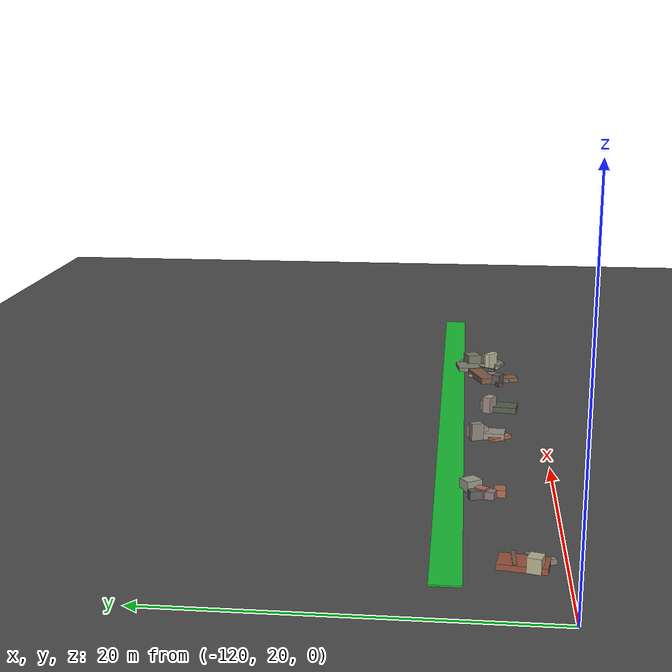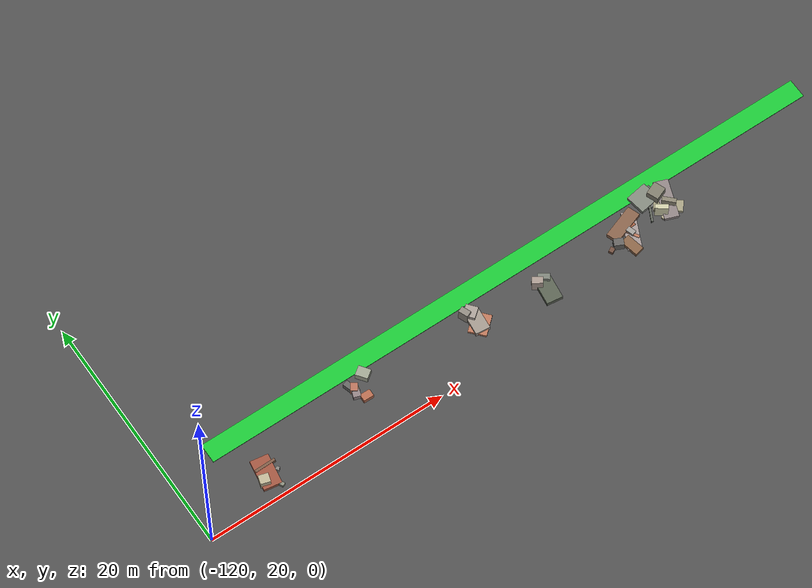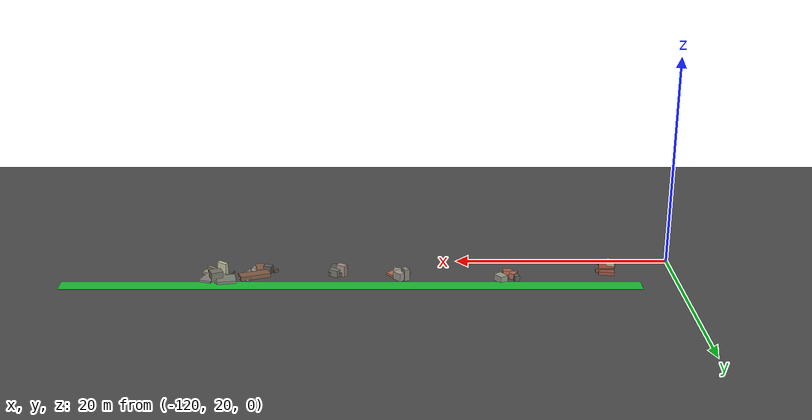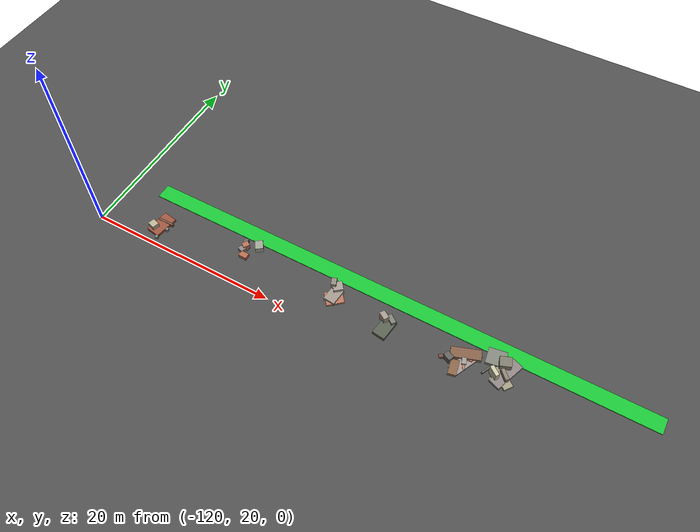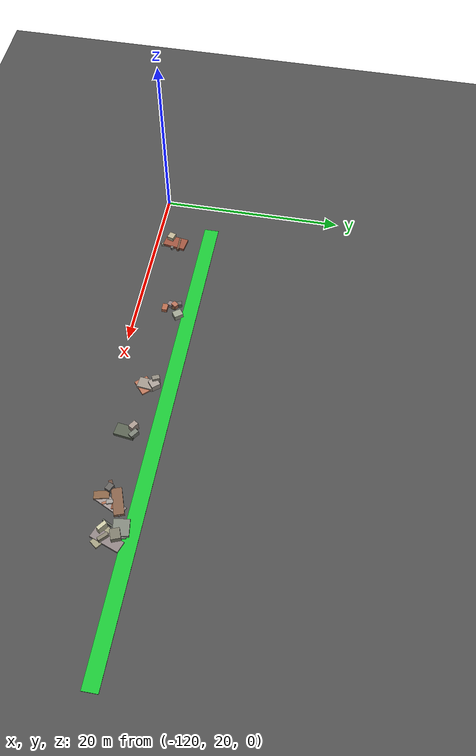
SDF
<sdf version="1.6">
 <world name="navitas_arena">
  <model name="ground_plane">
   <static>true</static>
   <link name="link">
    <collision name="collision">
     <geometry><plane><normal>0 0 1</normal><size>400 400</size></plane></geometry>
     <surface><friction><ode><mu>0.800</mu><mu2>0.800</mu2></ode></friction></surface>
    </collision>
    <visual name="visual">
     <cast_shadows>false</cast_shadows>
     <geometry><plane><normal>0 0 1</normal><size>400 400</size></plane></geometry>
     <material>
      <specular>0.04 0.04 0.04 1</specular>
      <script>
       <uri>file://media/materials/scripts/navitas_asphalt.material</uri>
       <name>Navitas/RealArenaAsphalt</name>
      </script>
     </material>
    </visual>
   </link>
  </model>
  <model name="brd_kolay_N">
   <static>true</static>
   <pose>-90.000 25.800 0.040 0 0 0.000</pose>
   <link name="link">
    <collision name="col"><geometry><box><size>53.200 1.600 0.080</size></box></geometry></collision>
    <visual name="vis">
     <geometry><box><size>53.200 1.600 0.080</size></box></geometry>
     <material>
      <ambient>0.10 0.75 0.20 1</ambient>
      <diffuse>0.10 0.75 0.20 1</diffuse>
      <specular>0.04 0.04 0.04 1</specular>
     </material>
    </visual>
   </link>
  </model>
  <model name="deb_kolay_17">
   <static>true</static>
   <pose>-81.853 23.199 0.000 0 0 0</pose>
   <link name="link">
    <collision name="col_0">
     <pose>-0.427 -0.559 0.349 0.000 0.000 1.129</pose>
     <geometry><box><size>0.589 0.770 0.698</size></box></geometry>
    </collision>
    <visual name="vis_0">
     <pose>-0.427 -0.559 0.349 0.000 0.000 1.129</pose>
     <geometry><box><size>0.589 0.770 0.698</size></box></geometry>
     <material>
      <ambient>0.36 0.34 0.33 1</ambient>
      <diffuse>0.38 0.37 0.36 1</diffuse>
      <specular>0.05 0.05 0.045 1</specular>
     </material>
    </visual>
    <collision name="col_1">
     <pose>0.795 0.552 0.197 0.000 0.000 3.487</pose>
     <geometry><box><size>2.820 1.041 0.394</size></box></geometry>
    </collision>
    <visual name="vis_1">
     <pose>0.795 0.552 0.197 0.000 0.000 3.487</pose>
     <geometry><box><size>2.820 1.041 0.394</size></box></geometry>
     <material>
      <ambient>0.47 0.34 0.26 1</ambient>
      <diffuse>0.51 0.37 0.28 1</diffuse>
      <specular>0.05 0.05 0.045 1</specular>
     </material>
    </visual>
    <collision name="col_2">
     <pose>0.372 -1.177 0.161 0.000 0.000 1.769</pose>
     <geometry><box><size>1.522 0.797 0.322</size></box></geometry>
    </collision>
    <visual name="vis_2">
     <pose>0.372 -1.177 0.161 0.000 0.000 1.769</pose>
     <geometry><box><size>1.522 0.797 0.322</size></box></geometry>
     <material>
      <ambient>0.48 0.36 0.25 1</ambient>
      <diffuse>0.52 0.38 0.27 1</diffuse>
      <specular>0.05 0.05 0.045 1</specular>
     </material>
    </visual>
    <collision name="col_3">
     <pose>-1.088 -0.649 0.143 0.000 0.000 3.645</pose>
     <geometry><box><size>0.452 0.360 0.286</size></box></geometry>
    </collision>
    <visual name="vis_3">
     <pose>-1.088 -0.649 0.143 0.000 0.000 3.645</pose>
     <geometry><box><size>0.452 0.360 0.286</size></box></geometry>
     <material>
      <ambient>0.39 0.28 0.22 1</ambient>
      <diffuse>0.42 0.30 0.24 1</diffuse>
      <specular>0.05 0.05 0.045 1</specular>
     </material>
    </visual>
   </link>
  </model>
  <model name="deb_kolay_19">
   <static>true</static>
   <pose>-113.766 22.358 0.000 0 0 0</pose>
   <link name="link">
    <collision name="col_0">
     <pose>-0.061 -0.844 0.142 0.000 0.000 1.971</pose>
     <geometry><box><size>2.097 0.293 0.283</size></box></geometry>
    </collision>
    <visual name="vis_0">
     <pose>-0.061 -0.844 0.142 0.000 0.000 1.971</pose>
     <geometry><box><size>2.097 0.293 0.283</size></box></geometry>
     <material>
      <ambient>0.48 0.49 0.44 1</ambient>
      <diffuse>0.52 0.53 0.47 1</diffuse>
      <specular>0.05 0.05 0.045 1</specular>
     </material>
    </visual>
    <collision name="col_1">
     <pose>-0.185 -0.247 0.155 0.000 0.000 1.414</pose>
     <geometry><box><size>2.482 1.459 0.311</size></box></geometry>
    </collision>
    <visual name="vis_1">
     <pose>-0.185 -0.247 0.155 0.000 0.000 1.414</pose>
     <geometry><box><size>2.482 1.459 0.311</size></box></geometry>
     <material>
      <ambient>0.56 0.29 0.22 1</ambient>
      <diffuse>0.60 0.32 0.24 1</diffuse>
      <specular>0.05 0.05 0.045 1</specular>
     </material>
    </visual>
    <collision name="col_2">
     <pose>0.044 0.210 0.174 0.000 0.000 0.016</pose>
     <geometry><box><size>1.699 0.215 0.347</size></box></geometry>
    </collision>
    <visual name="vis_2">
     <pose>0.044 0.210 0.174 0.000 0.000 0.016</pose>
     <geometry><box><size>1.699 0.215 0.347</size></box></geometry>
     <material>
      <ambient>0.43 0.32 0.24 1</ambient>
      <diffuse>0.47 0.34 0.26 1</diffuse>
      <specular>0.05 0.05 0.045 1</specular>
     </material>
    </visual>
    <collision name="col_3">
     <pose>0.671 -0.483 0.170 0.000 0.000 2.357</pose>
     <geometry><box><size>0.284 0.291 0.340</size></box></geometry>
    </collision>
    <visual name="vis_3">
     <pose>0.671 -0.483 0.170 0.000 0.000 2.357</pose>
     <geometry><box><size>0.284 0.291 0.340</size></box></geometry>
     <material>
      <ambient>0.46 0.45 0.43 1</ambient>
      <diffuse>0.50 0.49 0.47 1</diffuse>
      <specular>0.05 0.05 0.045 1</specular>
     </material>
    </visual>
    <collision name="col_4">
     <pose>-0.670 -0.797 0.397 0.000 0.000 1.281</pose>
     <geometry><box><size>0.723 0.780 0.794</size></box></geometry>
    </collision>
    <visual name="vis_4">
     <pose>-0.670 -0.797 0.397 0.000 0.000 1.281</pose>
     <geometry><box><size>0.723 0.780 0.794</size></box></geometry>
     <material>
      <ambient>0.66 0.63 0.52 1</ambient>
      <diffuse>0.72 0.68 0.56 1</diffuse>
      <specular>0.05 0.05 0.045 1</specular>
     </material>
    </visual>
   </link>
  </model>
  <model name="deb_kolay_24">
   <static>true</static>
   <pose>-80.832 23.178 0.000 0 0 0</pose>
   <link name="link">
    <collision name="col_0">
     <pose>0.035 -0.125 0.100 0.000 0.000 4.269</pose>
     <geometry><box><size>3.149 1.082 0.200</size></box></geometry>
    </collision>
    <visual name="vis_0">
     <pose>0.035 -0.125 0.100 0.000 0.000 4.269</pose>
     <geometry><box><size>3.149 1.082 0.200</size></box></geometry>
     <material>
      <ambient>0.57 0.53 0.52 1</ambient>
      <diffuse>0.62 0.57 0.56 1</diffuse>
      <specular>0.05 0.05 0.045 1</specular>
     </material>
    </visual>
    <collision name="col_1">
     <pose>0.349 0.225 0.139 0.000 0.000 1.627</pose>
     <geometry><box><size>0.282 0.453 0.278</size></box></geometry>
    </collision>
    <visual name="vis_1">
     <pose>0.349 0.225 0.139 0.000 0.000 1.627</pose>
     <geometry><box><size>0.282 0.453 0.278</size></box></geometry>
     <material>
      <ambient>0.58 0.33 0.23 1</ambient>
      <diffuse>0.62 0.36 0.25 1</diffuse>
      <specular>0.05 0.05 0.045 1</specular>
     </material>
    </visual>
    <collision name="col_2">
     <pose>-0.254 -0.081 0.129 0.000 0.000 2.100</pose>
     <geometry><box><size>1.883 0.215 0.257</size></box></geometry>
    </collision>
    <visual name="vis_2">
     <pose>-0.254 -0.081 0.129 0.000 0.000 2.100</pose>
     <geometry><box><size>1.883 0.215 0.257</size></box></geometry>
     <material>
      <ambient>0.65 0.43 0.32 1</ambient>
      <diffuse>0.71 0.46 0.35 1</diffuse>
      <specular>0.05 0.05 0.045 1</specular>
     </material>
    </visual>
    <collision name="col_3">
     <pose>-0.067 -0.184 0.210 0.000 0.000 1.886</pose>
     <geometry><box><size>0.648 0.419 0.421</size></box></geometry>
    </collision>
    <visual name="vis_3">
     <pose>-0.067 -0.184 0.210 0.000 0.000 1.886</pose>
     <geometry><box><size>0.648 0.419 0.421</size></box></geometry>
     <material>
      <ambient>0.56 0.55 0.53 1</ambient>
      <diffuse>0.61 0.59 0.57 1</diffuse>
      <specular>0.05 0.05 0.045 1</specular>
     </material>
    </visual>
   </link>
  </model>
  <model name="deb_kolay_32">
   <static>true</static>
   <pose>-77.544 23.545 0.000 0 0 0</pose>
   <link name="link">
    <collision name="col_0">
     <pose>-0.530 -0.503 0.582 0.000 0.000 2.502</pose>
     <geometry><box><size>1.014 0.375 1.164</size></box></geometry>
    </collision>
    <visual name="vis_0">
     <pose>-0.530 -0.503 0.582 0.000 0.000 2.502</pose>
     <geometry><box><size>1.014 0.375 1.164</size></box></geometry>
     <material>
      <ambient>0.73 0.71 0.60 1</ambient>
      <diffuse>0.78 0.77 0.64 1</diffuse>
      <specular>0.05 0.05 0.045 1</specular>
     </material>
    </visual>
    <collision name="col_1">
     <pose>0.073 -0.239 0.126 0.000 0.000 2.443</pose>
     <geometry><box><size>0.492 0.396 0.252</size></box></geometry>
    </collision>
    <visual name="vis_1">
     <pose>0.073 -0.239 0.126 0.000 0.000 2.443</pose>
     <geometry><box><size>0.492 0.396 0.252</size></box></geometry>
     <material>
      <ambient>0.62 0.36 0.25 1</ambient>
      <diffuse>0.67 0.39 0.27 1</diffuse>
      <specular>0.05 0.05 0.045 1</specular>
     </material>
    </visual>
    <collision name="col_2">
     <pose>-0.628 -0.907 0.091 0.000 0.000 1.699</pose>
     <geometry><box><size>0.222 0.251 0.182</size></box></geometry>
    </collision>
    <visual name="vis_2">
     <pose>-0.628 -0.907 0.091 0.000 0.000 1.699</pose>
     <geometry><box><size>0.222 0.251 0.182</size></box></geometry>
     <material>
      <ambient>0.67 0.63 0.53 1</ambient>
      <diffuse>0.72 0.68 0.57 1</diffuse>
      <specular>0.05 0.05 0.045 1</specular>
     </material>
    </visual>
    <collision name="col_3">
     <pose>0.247 -0.330 0.108 0.000 0.000 2.493</pose>
     <geometry><box><size>2.241 0.927 0.216</size></box></geometry>
    </collision>
    <visual name="vis_3">
     <pose>0.247 -0.330 0.108 0.000 0.000 2.493</pose>
     <geometry><box><size>2.241 0.927 0.216</size></box></geometry>
     <material>
      <ambient>0.57 0.56 0.46 1</ambient>
      <diffuse>0.62 0.60 0.49 1</diffuse>
      <specular>0.05 0.05 0.045 1</specular>
     </material>
    </visual>
    <collision name="col_4">
     <pose>0.317 0.097 0.065 0.000 0.000 2.125</pose>
     <geometry><box><size>0.368 0.233 0.130</size></box></geometry>
    </collision>
    <visual name="vis_4">
     <pose>0.317 0.097 0.065 0.000 0.000 2.125</pose>
     <geometry><box><size>0.368 0.233 0.130</size></box></geometry>
     <material>
      <ambient>0.53 0.48 0.49 1</ambient>
      <diffuse>0.57 0.52 0.53 1</diffuse>
      <specular>0.05 0.05 0.045 1</specular>
     </material>
    </visual>
    <collision name="col_5">
     <pose>0.394 0.152 0.138 0.000 0.000 1.219</pose>
     <geometry><box><size>3.180 1.149 0.275</size></box></geometry>
    </collision>
    <visual name="vis_5">
     <pose>0.394 0.152 0.138 0.000 0.000 1.219</pose>
     <geometry><box><size>3.180 1.149 0.275</size></box></geometry>
     <material>
      <ambient>0.50 0.47 0.46 1</ambient>
      <diffuse>0.54 0.50 0.50 1</diffuse>
      <specular>0.05 0.05 0.045 1</specular>
     </material>
    </visual>
    <collision name="col_6">
     <pose>-1.072 0.152 0.103 0.000 0.000 1.107</pose>
     <geometry><box><size>2.043 0.166 0.205</size></box></geometry>
    </collision>
    <visual name="vis_6">
     <pose>-1.072 0.152 0.103 0.000 0.000 1.107</pose>
     <geometry><box><size>2.043 0.166 0.205</size></box></geometry>
     <material>
      <ambient>0.33 0.35 0.32 1</ambient>
      <diffuse>0.36 0.38 0.34 1</diffuse>
      <specular>0.05 0.05 0.045 1</specular>
     </material>
    </visual>
   </link>
  </model>
  <model name="deb_kolay_34">
   <static>true</static>
   <pose>-77.807 23.910 0.000 0 0 0</pose>
   <link name="link">
    <collision name="col_0">
     <pose>-0.701 0.823 0.164 0.000 0.000 1.735</pose>
     <geometry><box><size>1.605 1.759 0.328</size></box></geometry>
    </collision>
    <visual name="vis_0">
     <pose>-0.701 0.823 0.164 0.000 0.000 1.735</pose>
     <geometry><box><size>1.605 1.759 0.328</size></box></geometry>
     <material>
      <ambient>0.45 0.48 0.44 1</ambient>
      <diffuse>0.49 0.51 0.47 1</diffuse>
      <specular>0.05 0.05 0.045 1</specular>
     </material>
    </visual>
    <collision name="col_1">
     <pose>0.632 -0.566 0.403 0.000 0.000 -0.787</pose>
     <geometry><box><size>1.092 0.357 0.807</size></box></geometry>
    </collision>
    <visual name="vis_1">
     <pose>0.632 -0.566 0.403 0.000 0.000 -0.787</pose>
     <geometry><box><size>1.092 0.357 0.807</size></box></geometry>
     <material>
      <ambient>0.48 0.46 0.40 1</ambient>
      <diffuse>0.52 0.50 0.43 1</diffuse>
      <specular>0.05 0.05 0.045 1</specular>
     </material>
    </visual>
    <collision name="col_2">
     <pose>-0.285 -0.456 0.067 0.000 0.000 -0.096</pose>
     <geometry><box><size>0.375 0.160 0.134</size></box></geometry>
    </collision>
    <visual name="vis_2">
     <pose>-0.285 -0.456 0.067 0.000 0.000 -0.096</pose>
     <geometry><box><size>0.375 0.160 0.134</size></box></geometry>
     <material>
      <ambient>0.57 0.36 0.22 1</ambient>
      <diffuse>0.61 0.39 0.23 1</diffuse>
      <specular>0.05 0.05 0.045 1</specular>
     </material>
    </visual>
    <collision name="col_3">
     <pose>0.084 -0.033 0.090 0.000 0.000 -0.224</pose>
     <geometry><box><size>0.349 0.309 0.180</size></box></geometry>
    </collision>
    <visual name="vis_3">
     <pose>0.084 -0.033 0.090 0.000 0.000 -0.224</pose>
     <geometry><box><size>0.349 0.309 0.180</size></box></geometry>
     <material>
      <ambient>0.65 0.38 0.28 1</ambient>
      <diffuse>0.70 0.41 0.31 1</diffuse>
      <specular>0.05 0.05 0.045 1</specular>
     </material>
    </visual>
    <collision name="col_4">
     <pose>0.233 0.533 0.468 0.000 0.000 0.376</pose>
     <geometry><box><size>1.087 0.974 0.936</size></box></geometry>
    </collision>
    <visual name="vis_4">
     <pose>0.233 0.533 0.468 0.000 0.000 0.376</pose>
     <geometry><box><size>1.087 0.974 0.936</size></box></geometry>
     <material>
      <ambient>0.45 0.44 0.38 1</ambient>
      <diffuse>0.48 0.47 0.41 1</diffuse>
      <specular>0.05 0.05 0.045 1</specular>
     </material>
    </visual>
    <collision name="col_5">
     <pose>-0.279 0.682 0.095 0.000 0.000 1.695</pose>
     <geometry><box><size>1.522 1.296 0.190</size></box></geometry>
    </collision>
    <visual name="vis_5">
     <pose>-0.279 0.682 0.095 0.000 0.000 1.695</pose>
     <geometry><box><size>1.522 1.296 0.190</size></box></geometry>
     <material>
      <ambient>0.40 0.40 0.39 1</ambient>
      <diffuse>0.43 0.43 0.42 1</diffuse>
      <specular>0.05 0.05 0.045 1</specular>
     </material>
    </visual>
   </link>
  </model>
  <model name="deb_kolay_71">
   <static>true</static>
   <pose>-94.483 23.883 0.000 0 0 0</pose>
   <link name="link">
    <collision name="col_0">
     <pose>0.067 -0.730 0.102 0.000 0.000 3.858</pose>
     <geometry><box><size>1.741 1.443 0.204</size></box></geometry>
    </collision>
    <visual name="vis_0">
     <pose>0.067 -0.730 0.102 0.000 0.000 3.858</pose>
     <geometry><box><size>1.741 1.443 0.204</size></box></geometry>
     <material>
      <ambient>0.66 0.42 0.32 1</ambient>
      <diffuse>0.71 0.45 0.34 1</diffuse>
      <specular>0.05 0.05 0.045 1</specular>
     </material>
    </visual>
    <collision name="col_1">
     <pose>-0.057 -0.581 0.207 0.000 0.000 1.467</pose>
     <geometry><box><size>1.667 1.177 0.413</size></box></geometry>
    </collision>
    <visual name="vis_1">
     <pose>-0.057 -0.581 0.207 0.000 0.000 1.467</pose>
     <geometry><box><size>1.667 1.177 0.413</size></box></geometry>
     <material>
      <ambient>0.57 0.53 0.49 1</ambient>
      <diffuse>0.61 0.57 0.53 1</diffuse>
      <specular>0.05 0.05 0.045 1</specular>
     </material>
    </visual>
    <collision name="col_2">
     <pose>-0.096 0.281 0.364 0.000 0.000 2.255</pose>
     <geometry><box><size>0.958 0.960 0.728</size></box></geometry>
    </collision>
    <visual name="vis_2">
     <pose>-0.096 0.281 0.364 0.000 0.000 2.255</pose>
     <geometry><box><size>0.958 0.960 0.728</size></box></geometry>
     <material>
      <ambient>0.60 0.55 0.53 1</ambient>
      <diffuse>0.64 0.60 0.57 1</diffuse>
      <specular>0.05 0.05 0.045 1</specular>
     </material>
    </visual>
    <collision name="col_3">
     <pose>-0.558 0.361 0.536 0.000 0.000 3.530</pose>
     <geometry><box><size>0.504 0.784 1.071</size></box></geometry>
    </collision>
    <visual name="vis_3">
     <pose>-0.558 0.361 0.536 0.000 0.000 3.530</pose>
     <geometry><box><size>0.504 0.784 1.071</size></box></geometry>
     <material>
      <ambient>0.50 0.48 0.44 1</ambient>
      <diffuse>0.54 0.52 0.48 1</diffuse>
      <specular>0.05 0.05 0.045 1</specular>
     </material>
    </visual>
   </link>
  </model>
  <model name="deb_kolay_173">
   <static>true</static>
   <pose>-88.606 23.167 0.000 0 0 0</pose>
   <link name="link">
    <collision name="col_0">
     <pose>0.133 0.317 0.332 0.000 0.000 2.511</pose>
     <geometry><box><size>0.941 0.492 0.665</size></box></geometry>
    </collision>
    <visual name="vis_0">
     <pose>0.133 0.317 0.332 0.000 0.000 2.511</pose>
     <geometry><box><size>0.941 0.492 0.665</size></box></geometry>
     <material>
      <ambient>0.43 0.45 0.42 1</ambient>
      <diffuse>0.47 0.49 0.45 1</diffuse>
      <specular>0.05 0.05 0.045 1</specular>
     </material>
    </visual>
    <collision name="col_1">
     <pose>-0.101 -0.614 0.187 0.000 0.000 1.443</pose>
     <geometry><box><size>2.086 1.309 0.374</size></box></geometry>
    </collision>
    <visual name="vis_1">
     <pose>-0.101 -0.614 0.187 0.000 0.000 1.443</pose>
     <geometry><box><size>2.086 1.309 0.374</size></box></geometry>
     <material>
      <ambient>0.31 0.34 0.29 1</ambient>
      <diffuse>0.34 0.37 0.31 1</diffuse>
      <specular>0.05 0.05 0.045 1</specular>
     </material>
    </visual>
    <collision name="col_2">
     <pose>-0.555 0.160 0.535 0.000 0.000 0.998</pose>
     <geometry><box><size>0.543 0.840 1.069</size></box></geometry>
    </collision>
    <visual name="vis_2">
     <pose>-0.555 0.160 0.535 0.000 0.000 0.998</pose>
     <geometry><box><size>0.543 0.840 1.069</size></box></geometry>
     <material>
      <ambient>0.59 0.54 0.50 1</ambient>
      <diffuse>0.64 0.58 0.54 1</diffuse>
      <specular>0.05 0.05 0.045 1</specular>
     </material>
    </visual>
    <collision name="col_3">
     <pose>-0.161 -0.687 0.152 0.000 0.000 0.532</pose>
     <geometry><box><size>0.365 0.272 0.304</size></box></geometry>
    </collision>
    <visual name="vis_3">
     <pose>-0.161 -0.687 0.152 0.000 0.000 0.532</pose>
     <geometry><box><size>0.365 0.272 0.304</size></box></geometry>
     <material>
      <ambient>0.54 0.55 0.48 1</ambient>
      <diffuse>0.58 0.60 0.52 1</diffuse>
      <specular>0.05 0.05 0.045 1</specular>
     </material>
    </visual>
   </link>
  </model>
  <model name="deb_kolay_204">
   <static>true</static>
   <pose>-104.341 23.869 0.000 0 0 0</pose>
   <link name="link">
    <collision name="col_0">
     <pose>-0.663 0.151 0.284 0.000 0.000 0.968</pose>
     <geometry><box><size>0.645 0.554 0.568</size></box></geometry>
    </collision>
    <visual name="vis_0">
     <pose>-0.663 0.151 0.284 0.000 0.000 0.968</pose>
     <geometry><box><size>0.645 0.554 0.568</size></box></geometry>
     <material>
      <ambient>0.64 0.39 0.32 1</ambient>
      <diffuse>0.69 0.43 0.34 1</diffuse>
      <specular>0.05 0.05 0.045 1</specular>
     </material>
    </visual>
    <collision name="col_1">
     <pose>0.537 0.725 0.306 0.000 0.000 0.629</pose>
     <geometry><box><size>0.797 0.987 0.612</size></box></geometry>
    </collision>
    <visual name="vis_1">
     <pose>0.537 0.725 0.306 0.000 0.000 0.629</pose>
     <geometry><box><size>0.797 0.987 0.612</size></box></geometry>
     <material>
      <ambient>0.56 0.57 0.51 1</ambient>
      <diffuse>0.60 0.62 0.55 1</diffuse>
      <specular>0.05 0.05 0.045 1</specular>
     </material>
    </visual>
    <collision name="col_2">
     <pose>-0.774 -0.331 0.225 0.000 0.000 1.240</pose>
     <geometry><box><size>0.591 0.590 0.450</size></box></geometry>
    </collision>
    <visual name="vis_2">
     <pose>-0.774 -0.331 0.225 0.000 0.000 1.240</pose>
     <geometry><box><size>0.591 0.590 0.450</size></box></geometry>
     <material>
      <ambient>0.51 0.45 0.46 1</ambient>
      <diffuse>0.55 0.49 0.50 1</diffuse>
      <specular>0.05 0.05 0.045 1</specular>
     </material>
    </visual>
    <collision name="col_3">
     <pose>-0.859 0.401 0.245 0.000 0.000 1.871</pose>
     <geometry><box><size>0.908 0.479 0.489</size></box></geometry>
    </collision>
    <visual name="vis_3">
     <pose>-0.859 0.401 0.245 0.000 0.000 1.871</pose>
     <geometry><box><size>0.908 0.479 0.489</size></box></geometry>
     <material>
      <ambient>0.35 0.35 0.34 1</ambient>
      <diffuse>0.38 0.38 0.37 1</diffuse>
      <specular>0.05 0.05 0.045 1</specular>
     </material>
    </visual>
    <collision name="col_4">
     <pose>-0.222 -0.872 0.205 0.000 0.000 -0.020</pose>
     <geometry><box><size>0.836 0.593 0.410</size></box></geometry>
    </collision>
    <visual name="vis_4">
     <pose>-0.222 -0.872 0.205 0.000 0.000 -0.020</pose>
     <geometry><box><size>0.836 0.593 0.410</size></box></geometry>
     <material>
      <ambient>0.64 0.38 0.28 1</ambient>
      <diffuse>0.69 0.41 0.30 1</diffuse>
      <specular>0.05 0.05 0.045 1</specular>
     </material>
    </visual>
    <collision name="col_5">
     <pose>-0.500 0.109 0.068 0.000 0.000 1.365</pose>
     <geometry><box><size>0.451 0.433 0.136</size></box></geometry>
    </collision>
    <visual name="vis_5">
     <pose>-0.500 0.109 0.068 0.000 0.000 1.365</pose>
     <geometry><box><size>0.451 0.433 0.136</size></box></geometry>
     <material>
      <ambient>0.49 0.37 0.26 1</ambient>
      <diffuse>0.53 0.40 0.28 1</diffuse>
      <specular>0.05 0.05 0.045 1</specular>
     </material>
    </visual>
   </link>
  </model>
 </world>
</sdf>
